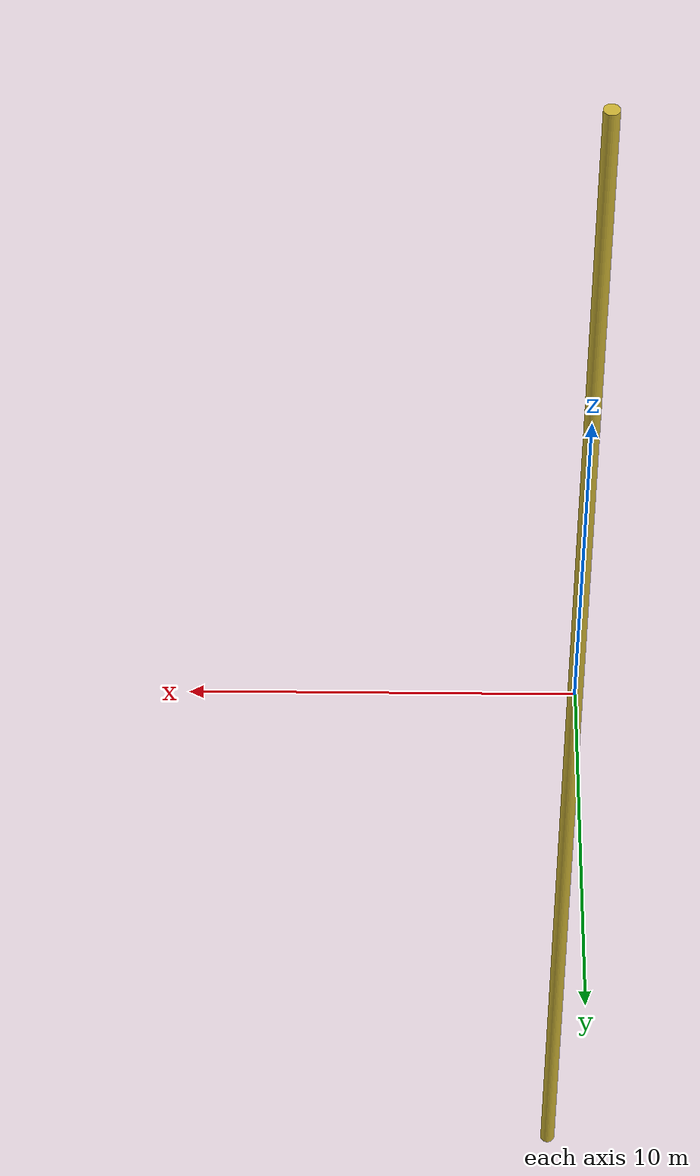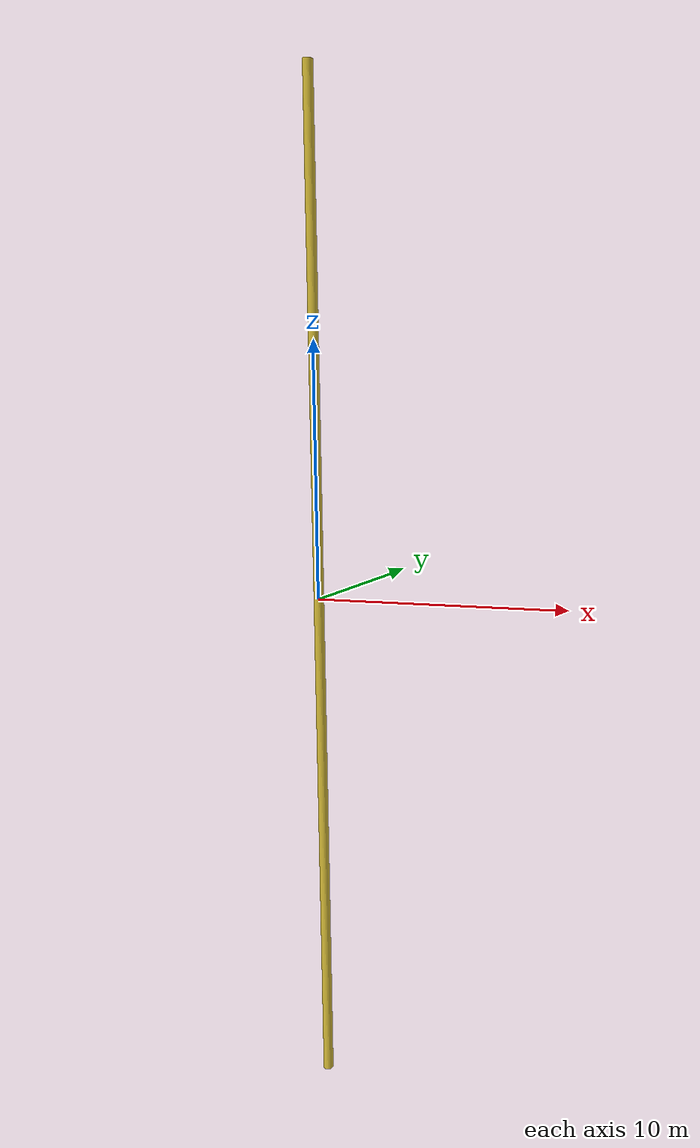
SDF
<?xml version="1.0" ?>
<sdf version="1.8">
  <model name="subsea_pipeline">
    <static>true</static>
    <link name="pipe_link">
      <collision name="collision">
        <geometry>
          <cylinder>
            <radius>0.20</radius>
            <length>40.0</length>
          </cylinder>
        </geometry>
      </collision>
      <visual name="visual">
        <geometry>
          <cylinder>
            <radius>0.20</radius>
            <length>40.0</length>
          </cylinder>
        </geometry>
        <material>
          <ambient>0.2 0.2 0.2 1</ambient>
          <diffuse>0.8 0.7 0.2 1</diffuse>
          <specular>0.1 0.1 0.1 1</specular>
        </material>
      </visual>
    </link>
  </model>
</sdf>
